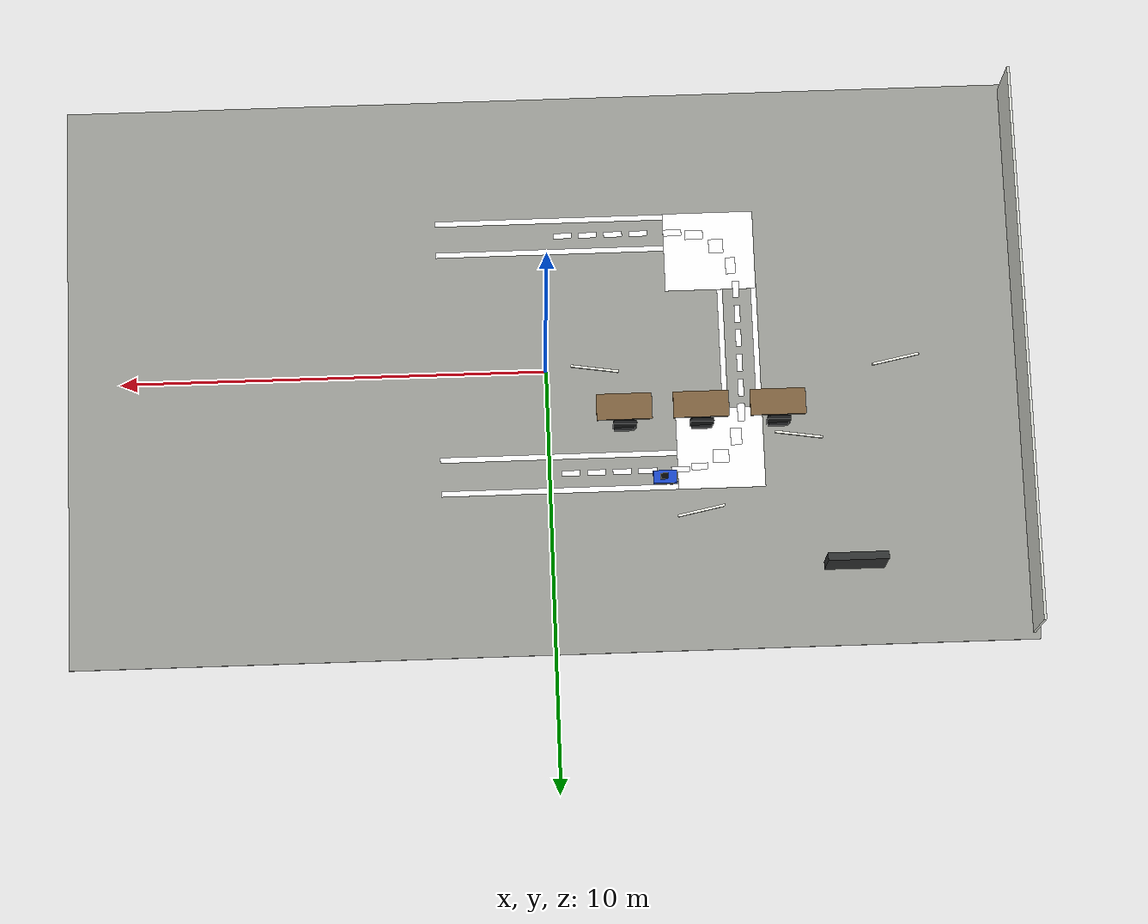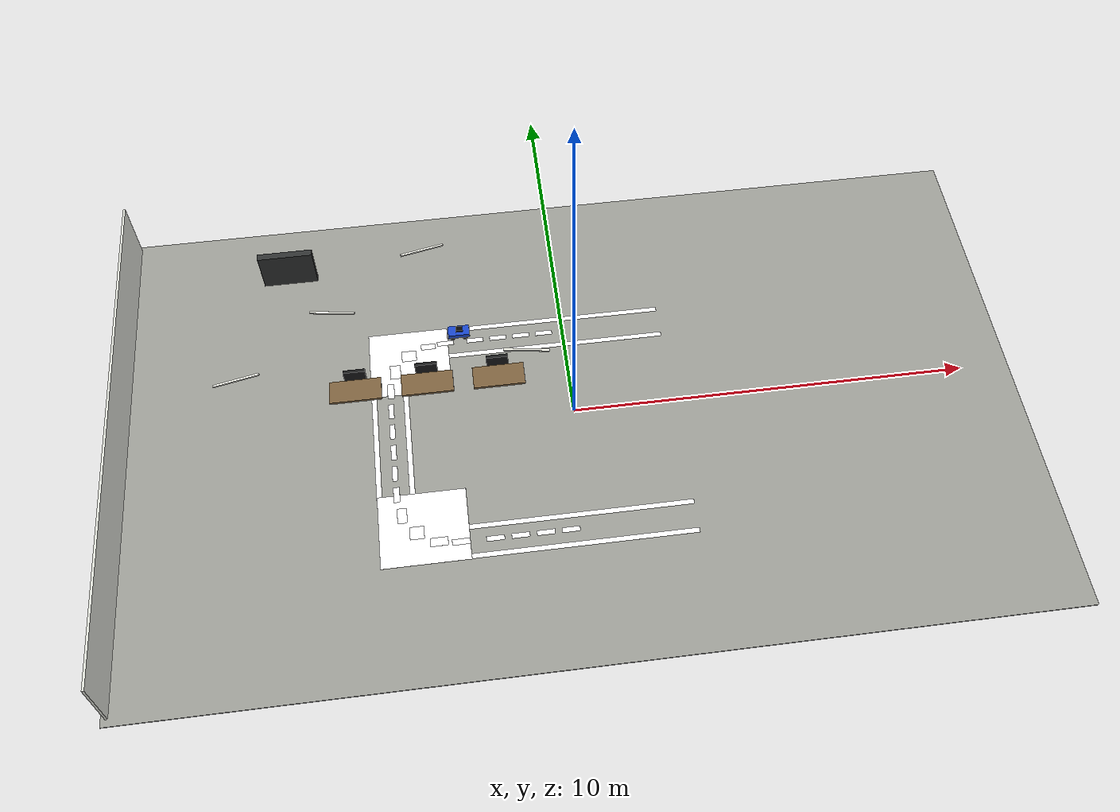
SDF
<sdf version="1.7">
 <world name="kookmin_xycar_track">
  <model name="kookmin_track">
   <static>true</static>
   <link name="floor_base">
    <pose>0.0000 0.0000 -0.0150 0.000000 0.000000 0.000000</pose>
    <collision name="collision">
     <geometry><box><size>22.5000 13.5000 0.0300</size></box></geometry>
     <surface>
      <friction>
       <ode><mu>50</mu><mu2>50</mu2></ode>
       <bullet><friction>1</friction><rolling_friction>0.1</rolling_friction></bullet>
      </friction>
     </surface>
    </collision>
    <visual name="visual">
     <geometry><box><size>22.5000 13.5000 0.0300</size></box></geometry>
     <material><ambient>0.6118 0.6157 0.5922 1</ambient><diffuse>0.6118 0.6157 0.5922 1</diffuse></material>
    </visual>
   </link>
   <link name="track_texture_surface">
    <pose>0 0 0.006 0 0 0</pose>
    <visual name="visual">
     <geometry><plane><normal>0 0 1</normal><size>22.5000 13.5000</size></plane></geometry>
     <material>
      <ambient>1 1 1 1</ambient>
      <diffuse>1 1 1 1</diffuse>
      <pbr>
       <metal>
        <albedo_map>file://media/materials/textures/kookmin_track_road.png</albedo_map>
        <roughness>1</roughness>
        <metalness>0</metalness>
       </metal>
      </pbr>
     </material>
    </visual>
   </link>
  </model>
  <model name="white_line_cad_01">
   <static>true</static>
   <pose>-4.9850 -0.4400 0.0140 0 0 0</pose>
   <link name="white_line_cad_01_surface">
    <visual name="visual">
     <cast_shadows>false</cast_shadows>
     <geometry><plane><normal>0 0 1</normal><size>0.1300 3.1200</size></plane></geometry>
     <material>
      <ambient>1 1 1 1</ambient>
      <diffuse>1 1 1 1</diffuse>
      <emissive>0.9490 0.9490 0.9255 1</emissive>
      <pbr>
       <metal>
        <albedo_map>file://media/materials/textures/kookmin_white_line_cad_01.png</albedo_map>
        <roughness>1</roughness>
        <metalness>0</metalness>
       </metal>
      </pbr>
     </material>
    </visual>
   </link>
  </model>
  <model name="white_line_cad_02">
   <static>true</static>
   <pose>-4.1850 -0.4400 0.0142 0 0 0</pose>
   <link name="white_line_cad_02_surface">
    <visual name="visual">
     <cast_shadows>false</cast_shadows>
     <geometry><plane><normal>0 0 1</normal><size>0.1300 3.1200</size></plane></geometry>
     <material>
      <ambient>1 1 1 1</ambient>
      <diffuse>1 1 1 1</diffuse>
      <emissive>0.9490 0.9490 0.9255 1</emissive>
      <pbr>
       <metal>
        <albedo_map>file://media/materials/textures/kookmin_white_line_cad_02.png</albedo_map>
        <roughness>1</roughness>
        <metalness>0</metalness>
       </metal>
      </pbr>
     </material>
    </visual>
   </link>
  </model>
  <model name="white_line_cad_03">
   <static>true</static>
   <pose>-0.3500 -3.7050 0.0144 0 0 0</pose>
   <link name="white_line_cad_03_surface">
    <visual name="visual">
     <cast_shadows>false</cast_shadows>
     <geometry><plane><normal>0 0 1</normal><size>5.7400 0.1300</size></plane></geometry>
     <material>
      <ambient>1 1 1 1</ambient>
      <diffuse>1 1 1 1</diffuse>
      <emissive>0.9490 0.9490 0.9255 1</emissive>
      <pbr>
       <metal>
        <albedo_map>file://media/materials/textures/kookmin_white_line_cad_03.png</albedo_map>
        <roughness>1</roughness>
        <metalness>0</metalness>
       </metal>
      </pbr>
     </material>
    </visual>
   </link>
  </model>
  <model name="white_line_cad_04">
   <static>true</static>
   <pose>-0.3500 -2.9350 0.0146 0 0 0</pose>
   <link name="white_line_cad_04_surface">
    <visual name="visual">
     <cast_shadows>false</cast_shadows>
     <geometry><plane><normal>0 0 1</normal><size>5.7400 0.1300</size></plane></geometry>
     <material>
      <ambient>1 1 1 1</ambient>
      <diffuse>1 1 1 1</diffuse>
      <emissive>0.9490 0.9490 0.9255 1</emissive>
      <pbr>
       <metal>
        <albedo_map>file://media/materials/textures/kookmin_white_line_cad_04.png</albedo_map>
        <roughness>1</roughness>
        <metalness>0</metalness>
       </metal>
      </pbr>
     </material>
    </visual>
   </link>
  </model>
  <model name="white_line_cad_05">
   <static>true</static>
   <pose>-0.3500 2.0550 0.0148 0 0 0</pose>
   <link name="white_line_cad_05_surface">
    <visual name="visual">
     <cast_shadows>false</cast_shadows>
     <geometry><plane><normal>0 0 1</normal><size>5.7800 0.1300</size></plane></geometry>
     <material>
      <ambient>1 1 1 1</ambient>
      <diffuse>1 1 1 1</diffuse>
      <emissive>0.9490 0.9490 0.9255 1</emissive>
      <pbr>
       <metal>
        <albedo_map>file://media/materials/textures/kookmin_white_line_cad_05.png</albedo_map>
        <roughness>1</roughness>
        <metalness>0</metalness>
       </metal>
      </pbr>
     </material>
    </visual>
   </link>
  </model>
  <model name="white_line_cad_06">
   <static>true</static>
   <pose>-0.3500 2.8650 0.0150 0 0 0</pose>
   <link name="white_line_cad_06_surface">
    <visual name="visual">
     <cast_shadows>false</cast_shadows>
     <geometry><plane><normal>0 0 1</normal><size>5.7800 0.1300</size></plane></geometry>
     <material>
      <ambient>1 1 1 1</ambient>
      <diffuse>1 1 1 1</diffuse>
      <emissive>0.9490 0.9490 0.9255 1</emissive>
      <pbr>
       <metal>
        <albedo_map>file://media/materials/textures/kookmin_white_line_cad_06.png</albedo_map>
        <roughness>1</roughness>
        <metalness>0</metalness>
       </metal>
      </pbr>
     </material>
    </visual>
   </link>
  </model>
  <model name="white_line_cad_18">
   <static>true</static>
   <pose>-3.6800 1.5650 0.0174 0 0 0</pose>
   <link name="white_line_cad_18_surface">
    <visual name="visual">
     <cast_shadows>false</cast_shadows>
     <geometry><plane><normal>0 0 1</normal><size>1.1400 1.1300</size></plane></geometry>
     <material>
      <ambient>1 1 1 1</ambient>
      <diffuse>1 1 1 1</diffuse>
      <emissive>0.9490 0.9490 0.9255 1</emissive>
      <pbr>
       <metal>
        <albedo_map>file://media/materials/textures/kookmin_white_line_cad_18.png</albedo_map>
        <roughness>1</roughness>
        <metalness>0</metalness>
       </metal>
      </pbr>
     </material>
    </visual>
   </link>
  </model>
  <model name="white_line_cad_19">
   <static>true</static>
   <pose>-4.0300 1.9650 0.0176 0 0 0</pose>
   <link name="white_line_cad_19_surface">
    <visual name="visual">
     <cast_shadows>false</cast_shadows>
     <geometry><plane><normal>0 0 1</normal><size>2.0400 1.9300</size></plane></geometry>
     <material>
      <ambient>1 1 1 1</ambient>
      <diffuse>1 1 1 1</diffuse>
      <emissive>0.9490 0.9490 0.9255 1</emissive>
      <pbr>
       <metal>
        <albedo_map>file://media/materials/textures/kookmin_white_line_cad_19.png</albedo_map>
        <roughness>1</roughness>
        <metalness>0</metalness>
       </metal>
      </pbr>
     </material>
    </visual>
   </link>
  </model>
  <model name="white_line_cad_20">
   <static>true</static>
   <pose>-3.6750 -2.4450 0.0178 0 0 0</pose>
   <link name="white_line_cad_20_surface">
    <visual name="visual">
     <cast_shadows>false</cast_shadows>
     <geometry><plane><normal>0 0 1</normal><size>1.1700 1.1300</size></plane></geometry>
     <material>
      <ambient>1 1 1 1</ambient>
      <diffuse>1 1 1 1</diffuse>
      <emissive>0.9490 0.9490 0.9255 1</emissive>
      <pbr>
       <metal>
        <albedo_map>file://media/materials/textures/kookmin_white_line_cad_20.png</albedo_map>
        <roughness>1</roughness>
        <metalness>0</metalness>
       </metal>
      </pbr>
     </material>
    </visual>
   </link>
  </model>
  <model name="white_line_cad_21">
   <static>true</static>
   <pose>-3.9700 -2.8300 0.0180 0 0 0</pose>
   <link name="white_line_cad_21_surface">
    <visual name="visual">
     <cast_shadows>false</cast_shadows>
     <geometry><plane><normal>0 0 1</normal><size>2.1400 1.9000</size></plane></geometry>
     <material>
      <ambient>1 1 1 1</ambient>
      <diffuse>1 1 1 1</diffuse>
      <emissive>0.9490 0.9490 0.9255 1</emissive>
      <pbr>
       <metal>
        <albedo_map>file://media/materials/textures/kookmin_white_line_cad_21.png</albedo_map>
        <roughness>1</roughness>
        <metalness>0</metalness>
       </metal>
      </pbr>
     </material>
    </visual>
   </link>
  </model>
  <model name="yellow_centerline_dash_001">
   <static>true</static>
   <pose>-2.3050 2.4650 0.0265 0 0 0</pose>
   <link name="yellow_centerline_dash_001_surface">
    <visual name="visual">
     <cast_shadows>false</cast_shadows>
     <geometry><plane><normal>0 0 1</normal><size>0.4300 0.1300</size></plane></geometry>
     <material>
      <ambient>1 1 1 1</ambient>
      <diffuse>1 1 1 1</diffuse>
      <emissive>1.0000 0.7686 0.0471 1</emissive>
      <pbr>
       <metal>
        <albedo_map>file://media/materials/textures/kookmin_yellow_centerline_dash_001.png</albedo_map>
        <roughness>1</roughness>
        <metalness>0</metalness>
       </metal>
      </pbr>
     </material>
    </visual>
   </link>
  </model>
  <model name="yellow_centerline_dash_002">
   <static>true</static>
   <pose>-1.7050 2.4650 0.0267 0 0 0</pose>
   <link name="yellow_centerline_dash_002_surface">
    <visual name="visual">
     <cast_shadows>false</cast_shadows>
     <geometry><plane><normal>0 0 1</normal><size>0.4300 0.1300</size></plane></geometry>
     <material>
      <ambient>1 1 1 1</ambient>
      <diffuse>1 1 1 1</diffuse>
      <emissive>1.0000 0.7686 0.0471 1</emissive>
      <pbr>
       <metal>
        <albedo_map>file://media/materials/textures/kookmin_yellow_centerline_dash_002.png</albedo_map>
        <roughness>1</roughness>
        <metalness>0</metalness>
       </metal>
      </pbr>
     </material>
    </visual>
   </link>
  </model>
  <model name="yellow_centerline_dash_003">
   <static>true</static>
   <pose>-1.1050 2.4650 0.0269 0 0 0</pose>
   <link name="yellow_centerline_dash_003_surface">
    <visual name="visual">
     <cast_shadows>false</cast_shadows>
     <geometry><plane><normal>0 0 1</normal><size>0.4300 0.1300</size></plane></geometry>
     <material>
      <ambient>1 1 1 1</ambient>
      <diffuse>1 1 1 1</diffuse>
      <emissive>1.0000 0.7686 0.0471 1</emissive>
      <pbr>
       <metal>
        <albedo_map>file://media/materials/textures/kookmin_yellow_centerline_dash_003.png</albedo_map>
        <roughness>1</roughness>
        <metalness>0</metalness>
       </metal>
      </pbr>
     </material>
    </visual>
   </link>
  </model>
  <model name="yellow_centerline_dash_004">
   <static>true</static>
   <pose>-0.5050 2.4650 0.0271 0 0 0</pose>
   <link name="yellow_centerline_dash_004_surface">
    <visual name="visual">
     <cast_shadows>false</cast_shadows>
     <geometry><plane><normal>0 0 1</normal><size>0.4300 0.1300</size></plane></geometry>
     <material>
      <ambient>1 1 1 1</ambient>
      <diffuse>1 1 1 1</diffuse>
      <emissive>1.0000 0.7686 0.0471 1</emissive>
      <pbr>
       <metal>
        <albedo_map>file://media/materials/textures/kookmin_yellow_centerline_dash_004.png</albedo_map>
        <roughness>1</roughness>
        <metalness>0</metalness>
       </metal>
      </pbr>
     </material>
    </visual>
   </link>
  </model>
  <model name="yellow_centerline_dash_009">
   <static>true</static>
   <pose>-3.0750 2.4550 0.0281 0 0 0</pose>
   <link name="yellow_centerline_dash_009_surface">
    <visual name="visual">
     <cast_shadows>false</cast_shadows>
     <geometry><plane><normal>0 0 1</normal><size>0.4300 0.1300</size></plane></geometry>
     <material>
      <ambient>1 1 1 1</ambient>
      <diffuse>1 1 1 1</diffuse>
      <emissive>1.0000 0.7686 0.0471 1</emissive>
      <pbr>
       <metal>
        <albedo_map>file://media/materials/textures/kookmin_yellow_centerline_dash_009.png</albedo_map>
        <roughness>1</roughness>
        <metalness>0</metalness>
       </metal>
      </pbr>
     </material>
    </visual>
   </link>
  </model>
  <model name="yellow_centerline_dash_011">
   <static>true</static>
   <pose>-3.5250 2.4000 0.0285 0 0 0</pose>
   <link name="yellow_centerline_dash_011_surface">
    <visual name="visual">
     <cast_shadows>false</cast_shadows>
     <geometry><plane><normal>0 0 1</normal><size>0.3700 0.1600</size></plane></geometry>
     <material>
      <ambient>1 1 1 1</ambient>
      <diffuse>1 1 1 1</diffuse>
      <emissive>1.0000 0.7686 0.0471 1</emissive>
      <pbr>
       <metal>
        <albedo_map>file://media/materials/textures/kookmin_yellow_centerline_dash_011.png</albedo_map>
        <roughness>1</roughness>
        <metalness>0</metalness>
       </metal>
      </pbr>
     </material>
    </visual>
   </link>
  </model>
  <model name="yellow_centerline_dash_013">
   <static>true</static>
   <pose>-4.0350 2.1650 0.0289 0 0 0</pose>
   <link name="yellow_centerline_dash_013_surface">
    <visual name="visual">
     <cast_shadows>false</cast_shadows>
     <geometry><plane><normal>0 0 1</normal><size>0.3700 0.3100</size></plane></geometry>
     <material>
      <ambient>1 1 1 1</ambient>
      <diffuse>1 1 1 1</diffuse>
      <emissive>1.0000 0.7686 0.0471 1</emissive>
      <pbr>
       <metal>
        <albedo_map>file://media/materials/textures/kookmin_yellow_centerline_dash_013.png</albedo_map>
        <roughness>1</roughness>
        <metalness>0</metalness>
       </metal>
      </pbr>
     </material>
    </visual>
   </link>
  </model>
  <model name="yellow_centerline_dash_014">
   <static>true</static>
   <pose>-4.4100 1.7100 0.0291 0 0 0</pose>
   <link name="yellow_centerline_dash_014_surface">
    <visual name="visual">
     <cast_shadows>false</cast_shadows>
     <geometry><plane><normal>0 0 1</normal><size>0.2600 0.4000</size></plane></geometry>
     <material>
      <ambient>1 1 1 1</ambient>
      <diffuse>1 1 1 1</diffuse>
      <emissive>1.0000 0.7686 0.0471 1</emissive>
      <pbr>
       <metal>
        <albedo_map>file://media/materials/textures/kookmin_yellow_centerline_dash_014.png</albedo_map>
        <roughness>1</roughness>
        <metalness>0</metalness>
       </metal>
      </pbr>
     </material>
    </visual>
   </link>
  </model>
  <model name="yellow_centerline_dash_016">
   <static>true</static>
   <pose>-4.5550 1.1350 0.0295 0 0 0</pose>
   <link name="yellow_centerline_dash_016_surface">
    <visual name="visual">
     <cast_shadows>false</cast_shadows>
     <geometry><plane><normal>0 0 1</normal><size>0.1700 0.4300</size></plane></geometry>
     <material>
      <ambient>1 1 1 1</ambient>
      <diffuse>1 1 1 1</diffuse>
      <emissive>1.0000 0.7686 0.0471 1</emissive>
      <pbr>
       <metal>
        <albedo_map>file://media/materials/textures/kookmin_yellow_centerline_dash_016.png</albedo_map>
        <roughness>1</roughness>
        <metalness>0</metalness>
       </metal>
      </pbr>
     </material>
    </visual>
   </link>
  </model>
  <model name="yellow_centerline_dash_019">
   <static>true</static>
   <pose>-4.5750 0.5300 0.0301 0 0 0</pose>
   <link name="yellow_centerline_dash_019_surface">
    <visual name="visual">
     <cast_shadows>false</cast_shadows>
     <geometry><plane><normal>0 0 1</normal><size>0.1300 0.4200</size></plane></geometry>
     <material>
      <ambient>1 1 1 1</ambient>
      <diffuse>1 1 1 1</diffuse>
      <emissive>1.0000 0.7686 0.0471 1</emissive>
      <pbr>
       <metal>
        <albedo_map>file://media/materials/textures/kookmin_yellow_centerline_dash_019.png</albedo_map>
        <roughness>1</roughness>
        <metalness>0</metalness>
       </metal>
      </pbr>
     </material>
    </visual>
   </link>
  </model>
  <model name="yellow_centerline_dash_021">
   <static>true</static>
   <pose>-4.5750 -0.0700 0.0305 0 0 0</pose>
   <link name="yellow_centerline_dash_021_surface">
    <visual name="visual">
     <cast_shadows>false</cast_shadows>
     <geometry><plane><normal>0 0 1</normal><size>0.1300 0.4200</size></plane></geometry>
     <material>
      <ambient>1 1 1 1</ambient>
      <diffuse>1 1 1 1</diffuse>
      <emissive>1.0000 0.7686 0.0471 1</emissive>
      <pbr>
       <metal>
        <albedo_map>file://media/materials/textures/kookmin_yellow_centerline_dash_021.png</albedo_map>
        <roughness>1</roughness>
        <metalness>0</metalness>
       </metal>
      </pbr>
     </material>
    </visual>
   </link>
  </model>
  <model name="yellow_centerline_dash_023">
   <static>true</static>
   <pose>-4.5750 -0.6700 0.0309 0 0 0</pose>
   <link name="yellow_centerline_dash_023_surface">
    <visual name="visual">
     <cast_shadows>false</cast_shadows>
     <geometry><plane><normal>0 0 1</normal><size>0.1300 0.4200</size></plane></geometry>
     <material>
      <ambient>1 1 1 1</ambient>
      <diffuse>1 1 1 1</diffuse>
      <emissive>1.0000 0.7686 0.0471 1</emissive>
      <pbr>
       <metal>
        <albedo_map>file://media/materials/textures/kookmin_yellow_centerline_dash_023.png</albedo_map>
        <roughness>1</roughness>
        <metalness>0</metalness>
       </metal>
      </pbr>
     </material>
    </visual>
   </link>
  </model>
  <model name="yellow_centerline_dash_025">
   <static>true</static>
   <pose>-4.5750 -1.2700 0.0313 0 0 0</pose>
   <link name="yellow_centerline_dash_025_surface">
    <visual name="visual">
     <cast_shadows>false</cast_shadows>
     <geometry><plane><normal>0 0 1</normal><size>0.1300 0.4200</size></plane></geometry>
     <material>
      <ambient>1 1 1 1</ambient>
      <diffuse>1 1 1 1</diffuse>
      <emissive>1.0000 0.7686 0.0471 1</emissive>
      <pbr>
       <metal>
        <albedo_map>file://media/materials/textures/kookmin_yellow_centerline_dash_025.png</albedo_map>
        <roughness>1</roughness>
        <metalness>0</metalness>
       </metal>
      </pbr>
     </material>
    </visual>
   </link>
  </model>
  <model name="yellow_centerline_dash_028">
   <static>true</static>
   <pose>-4.5650 -1.8650 0.0319 0 0 0</pose>
   <link name="yellow_centerline_dash_028_surface">
    <visual name="visual">
     <cast_shadows>false</cast_shadows>
     <geometry><plane><normal>0 0 1</normal><size>0.1500 0.4100</size></plane></geometry>
     <material>
      <ambient>1 1 1 1</ambient>
      <diffuse>1 1 1 1</diffuse>
      <emissive>1.0000 0.7686 0.0471 1</emissive>
      <pbr>
       <metal>
        <albedo_map>file://media/materials/textures/kookmin_yellow_centerline_dash_028.png</albedo_map>
        <roughness>1</roughness>
        <metalness>0</metalness>
       </metal>
      </pbr>
     </material>
    </visual>
   </link>
  </model>
  <model name="yellow_centerline_dash_030">
   <static>true</static>
   <pose>-4.4650 -2.4500 0.0323 0 0 0</pose>
   <link name="yellow_centerline_dash_030_surface">
    <visual name="visual">
     <cast_shadows>false</cast_shadows>
     <geometry><plane><normal>0 0 1</normal><size>0.2300 0.4000</size></plane></geometry>
     <material>
      <ambient>1 1 1 1</ambient>
      <diffuse>1 1 1 1</diffuse>
      <emissive>1.0000 0.7686 0.0471 1</emissive>
      <pbr>
       <metal>
        <albedo_map>file://media/materials/textures/kookmin_yellow_centerline_dash_030.png</albedo_map>
        <roughness>1</roughness>
        <metalness>0</metalness>
       </metal>
      </pbr>
     </material>
    </visual>
   </link>
  </model>
  <model name="yellow_centerline_dash_032">
   <static>true</static>
   <pose>-4.1400 -2.9450 0.0327 0 0 0</pose>
   <link name="yellow_centerline_dash_032_surface">
    <visual name="visual">
     <cast_shadows>false</cast_shadows>
     <geometry><plane><normal>0 0 1</normal><size>0.3400 0.3300</size></plane></geometry>
     <material>
      <ambient>1 1 1 1</ambient>
      <diffuse>1 1 1 1</diffuse>
      <emissive>1.0000 0.7686 0.0471 1</emissive>
      <pbr>
       <metal>
        <albedo_map>file://media/materials/textures/kookmin_yellow_centerline_dash_032.png</albedo_map>
        <roughness>1</roughness>
        <metalness>0</metalness>
       </metal>
      </pbr>
     </material>
    </visual>
   </link>
  </model>
  <model name="yellow_centerline_dash_033">
   <static>true</static>
   <pose>-3.6300 -3.2400 0.0329 0 0 0</pose>
   <link name="yellow_centerline_dash_033_surface">
    <visual name="visual">
     <cast_shadows>false</cast_shadows>
     <geometry><plane><normal>0 0 1</normal><size>0.4200 0.2200</size></plane></geometry>
     <material>
      <ambient>1 1 1 1</ambient>
      <diffuse>1 1 1 1</diffuse>
      <emissive>1.0000 0.7686 0.0471 1</emissive>
      <pbr>
       <metal>
        <albedo_map>file://media/materials/textures/kookmin_yellow_centerline_dash_033.png</albedo_map>
        <roughness>1</roughness>
        <metalness>0</metalness>
       </metal>
      </pbr>
     </material>
    </visual>
   </link>
  </model>
  <model name="yellow_centerline_dash_035">
   <static>true</static>
   <pose>-3.1150 -3.3050 0.0333 0 0 0</pose>
   <link name="yellow_centerline_dash_035_surface">
    <visual name="visual">
     <cast_shadows>false</cast_shadows>
     <geometry><plane><normal>0 0 1</normal><size>0.4300 0.1500</size></plane></geometry>
     <material>
      <ambient>1 1 1 1</ambient>
      <diffuse>1 1 1 1</diffuse>
      <emissive>1.0000 0.7686 0.0471 1</emissive>
      <pbr>
       <metal>
        <albedo_map>file://media/materials/textures/kookmin_yellow_centerline_dash_035.png</albedo_map>
        <roughness>1</roughness>
        <metalness>0</metalness>
       </metal>
      </pbr>
     </material>
    </visual>
   </link>
  </model>
  <model name="yellow_centerline_dash_036">
   <static>true</static>
   <pose>-2.3050 -3.3150 0.0335 0 0 0</pose>
   <link name="yellow_centerline_dash_036_surface">
    <visual name="visual">
     <cast_shadows>false</cast_shadows>
     <geometry><plane><normal>0 0 1</normal><size>0.4300 0.1300</size></plane></geometry>
     <material>
      <ambient>1 1 1 1</ambient>
      <diffuse>1 1 1 1</diffuse>
      <emissive>1.0000 0.7686 0.0471 1</emissive>
      <pbr>
       <metal>
        <albedo_map>file://media/materials/textures/kookmin_yellow_centerline_dash_036.png</albedo_map>
        <roughness>1</roughness>
        <metalness>0</metalness>
       </metal>
      </pbr>
     </material>
    </visual>
   </link>
  </model>
  <model name="yellow_centerline_dash_037">
   <static>true</static>
   <pose>-1.7050 -3.3150 0.0337 0 0 0</pose>
   <link name="yellow_centerline_dash_037_surface">
    <visual name="visual">
     <cast_shadows>false</cast_shadows>
     <geometry><plane><normal>0 0 1</normal><size>0.4300 0.1300</size></plane></geometry>
     <material>
      <ambient>1 1 1 1</ambient>
      <diffuse>1 1 1 1</diffuse>
      <emissive>1.0000 0.7686 0.0471 1</emissive>
      <pbr>
       <metal>
        <albedo_map>file://media/materials/textures/kookmin_yellow_centerline_dash_037.png</albedo_map>
        <roughness>1</roughness>
        <metalness>0</metalness>
       </metal>
      </pbr>
     </material>
    </visual>
   </link>
  </model>
  <model name="yellow_centerline_dash_038">
   <static>true</static>
   <pose>-1.1050 -3.3150 0.0339 0 0 0</pose>
   <link name="yellow_centerline_dash_038_surface">
    <visual name="visual">
     <cast_shadows>false</cast_shadows>
     <geometry><plane><normal>0 0 1</normal><size>0.4300 0.1300</size></plane></geometry>
     <material>
      <ambient>1 1 1 1</ambient>
      <diffuse>1 1 1 1</diffuse>
      <emissive>1.0000 0.7686 0.0471 1</emissive>
      <pbr>
       <metal>
        <albedo_map>file://media/materials/textures/kookmin_yellow_centerline_dash_038.png</albedo_map>
        <roughness>1</roughness>
        <metalness>0</metalness>
       </metal>
      </pbr>
     </material>
    </visual>
   </link>
  </model>
  <model name="yellow_centerline_dash_039">
   <static>true</static>
   <pose>-0.5050 -3.3150 0.0341 0 0 0</pose>
   <link name="yellow_centerline_dash_039_surface">
    <visual name="visual">
     <cast_shadows>false</cast_shadows>
     <geometry><plane><normal>0 0 1</normal><size>0.4300 0.1300</size></plane></geometry>
     <material>
      <ambient>1 1 1 1</ambient>
      <diffuse>1 1 1 1</diffuse>
      <emissive>1.0000 0.7686 0.0471 1</emissive>
      <pbr>
       <metal>
        <albedo_map>file://media/materials/textures/kookmin_yellow_centerline_dash_039.png</albedo_map>
        <roughness>1</roughness>
        <metalness>0</metalness>
       </metal>
      </pbr>
     </material>
    </visual>
   </link>
  </model>
  <model name="room_west_wall">
   <static>true</static>
   <pose>-11.1000 0.0000 0.9000 0.000000 0.000000 0.000000</pose>
   <link name="west_wall">
    <visual name="visual">
     <geometry><box><size>0.0600 13.2000 1.7000</size></box></geometry>
     <material><ambient>0.8627 0.8706 0.8392 1</ambient><diffuse>0.8627 0.8706 0.8392 1</diffuse></material>
    </visual>
   </link>
  </model>
  <model name="room_black_display_stand">
   <static>true</static>
   <pose>-7.0000 4.9000 0.7500 0.000000 0.000000 0.000000</pose>
   <link name="black_display_stand">
    <visual name="visual">
     <geometry><box><size>1.4000 0.1800 1.1000</size></box></geometry>
     <material><ambient>0.1882 0.1961 0.1961 1</ambient><diffuse>0.1882 0.1961 0.1961 1</diffuse></material>
    </visual>
   </link>
  </model>
  <model name="room_table_top_0">
   <static>true</static>
   <pose>-5.4000 1.0000 0.4300 0.000000 0.000000 0.000000</pose>
   <link name="table_top_0">
    <visual name="visual">
     <geometry><box><size>1.3000 0.6200 0.0600</size></box></geometry>
     <material><ambient>0.4941 0.3843 0.2471 1</ambient><diffuse>0.4941 0.3843 0.2471 1</diffuse></material>
    </visual>
   </link>
  </model>
  <model name="room_chair_back_0">
   <static>true</static>
   <pose>-5.4000 1.4300 0.4200 0.000000 0.000000 0.000000</pose>
   <link name="chair_back_0">
    <visual name="visual">
     <geometry><box><size>0.5500 0.0800 0.5200</size></box></geometry>
     <material><ambient>0.0941 0.0980 0.1020 1</ambient><diffuse>0.0941 0.0980 0.1020 1</diffuse></material>
    </visual>
   </link>
  </model>
  <model name="room_chair_seat_0">
   <static>true</static>
   <pose>-5.4000 1.3400 0.2600 0.000000 0.000000 0.000000</pose>
   <link name="chair_seat_0">
    <visual name="visual">
     <geometry><box><size>0.4800 0.4000 0.0800</size></box></geometry>
     <material><ambient>0.0941 0.0980 0.1020 1</ambient><diffuse>0.0941 0.0980 0.1020 1</diffuse></material>
    </visual>
   </link>
  </model>
  <model name="room_table_top_1">
   <static>true</static>
   <pose>-3.6000 1.0000 0.4300 0.000000 0.000000 0.000000</pose>
   <link name="table_top_1">
    <visual name="visual">
     <geometry><box><size>1.3000 0.6200 0.0600</size></box></geometry>
     <material><ambient>0.4941 0.3843 0.2471 1</ambient><diffuse>0.4941 0.3843 0.2471 1</diffuse></material>
    </visual>
   </link>
  </model>
  <model name="room_chair_back_1">
   <static>true</static>
   <pose>-3.6000 1.4300 0.4200 0.000000 0.000000 0.000000</pose>
   <link name="chair_back_1">
    <visual name="visual">
     <geometry><box><size>0.5500 0.0800 0.5200</size></box></geometry>
     <material><ambient>0.0941 0.0980 0.1020 1</ambient><diffuse>0.0941 0.0980 0.1020 1</diffuse></material>
    </visual>
   </link>
  </model>
  <model name="room_chair_seat_1">
   <static>true</static>
   <pose>-3.6000 1.3400 0.2600 0.000000 0.000000 0.000000</pose>
   <link name="chair_seat_1">
    <visual name="visual">
     <geometry><box><size>0.4800 0.4000 0.0800</size></box></geometry>
     <material><ambient>0.0941 0.0980 0.1020 1</ambient><diffuse>0.0941 0.0980 0.1020 1</diffuse></material>
    </visual>
   </link>
  </model>
  <model name="room_table_top_2">
   <static>true</static>
   <pose>-1.8000 1.0000 0.4300 0.000000 0.000000 0.000000</pose>
   <link name="table_top_2">
    <visual name="visual">
     <geometry><box><size>1.3000 0.6200 0.0600</size></box></geometry>
     <material><ambient>0.4941 0.3843 0.2471 1</ambient><diffuse>0.4941 0.3843 0.2471 1</diffuse></material>
    </visual>
   </link>
  </model>
  <model name="room_chair_back_2">
   <static>true</static>
   <pose>-1.8000 1.4300 0.4200 0.000000 0.000000 0.000000</pose>
   <link name="chair_back_2">
    <visual name="visual">
     <geometry><box><size>0.5500 0.0800 0.5200</size></box></geometry>
     <material><ambient>0.0941 0.0980 0.1020 1</ambient><diffuse>0.0941 0.0980 0.1020 1</diffuse></material>
    </visual>
   </link>
  </model>
  <model name="room_chair_seat_2">
   <static>true</static>
   <pose>-1.8000 1.3400 0.2600 0.000000 0.000000 0.000000</pose>
   <link name="chair_seat_2">
    <visual name="visual">
     <geometry><box><size>0.4800 0.4000 0.0800</size></box></geometry>
     <material><ambient>0.0941 0.0980 0.1020 1</ambient><diffuse>0.0941 0.0980 0.1020 1</diffuse></material>
    </visual>
   </link>
  </model>
  <model name="room_ceiling_light_0">
   <static>true</static>
   <pose>-8.0000 0.5000 2.1500 0.000000 0.000000 0.200000</pose>
   <link name="ceiling_light_0">
    <visual name="visual">
     <geometry><box><size>1.1000 0.0550 0.0350</size></box></geometry>
     <material><ambient>0.9608 0.9608 0.9216 1</ambient><diffuse>0.9608 0.9608 0.9216 1</diffuse></material>
    </visual>
   </link>
  </model>
  <model name="room_ceiling_light_1">
   <static>true</static>
   <pose>-5.7000 2.2000 2.1500 0.000000 0.000000 -0.150000</pose>
   <link name="ceiling_light_1">
    <visual name="visual">
     <geometry><box><size>1.1000 0.0550 0.0350</size></box></geometry>
     <material><ambient>0.9608 0.9608 0.9216 1</ambient><diffuse>0.9608 0.9608 0.9216 1</diffuse></material>
    </visual>
   </link>
  </model>
  <model name="room_ceiling_light_2">
   <static>true</static>
   <pose>-3.4000 3.9000 2.1500 0.000000 0.000000 0.200000</pose>
   <link name="ceiling_light_2">
    <visual name="visual">
     <geometry><box><size>1.1000 0.0550 0.0350</size></box></geometry>
     <material><ambient>0.9608 0.9608 0.9216 1</ambient><diffuse>0.9608 0.9608 0.9216 1</diffuse></material>
    </visual>
   </link>
  </model>
  <model name="room_ceiling_light_3">
   <static>true</static>
   <pose>-1.1000 0.5000 2.1500 0.000000 0.000000 -0.150000</pose>
   <link name="ceiling_light_3">
    <visual name="visual">
     <geometry><box><size>1.1000 0.0550 0.0350</size></box></geometry>
     <material><ambient>0.9608 0.9608 0.9216 1</ambient><diffuse>0.9608 0.9608 0.9216 1</diffuse></material>
    </visual>
   </link>
  </model>
  <model name="xycar_ackermann">
   <pose>-2.7000 2.6650 0.0500 0 0 3.1416</pose>
   <link name="chassis">
    <pose>0 0 0.135 0 0 0</pose>
    <inertial>
     <mass>2.2</mass>
     <inertia><ixx>0.055</ixx><ixy>0</ixy><ixz>0</ixz><iyy>0.13</iyy><iyz>0</iyz><izz>0.16</izz></inertia>
    </inertial>
    <collision name="collision"><geometry><box><size>0.55 0.30 0.12</size></box></geometry></collision>
    <visual name="body">
     <visibility_flags>2</visibility_flags>
     <geometry><box><size>0.55 0.30 0.12</size></box></geometry>
     <material><ambient>0.1 0.28 0.8 1</ambient><diffuse>0.1 0.28 0.8 1</diffuse></material>
    </visual>
    <visual name="mini_pc_body">
     <visibility_flags>2</visibility_flags>
     <pose>-0.02 0 0.115 0 0 0</pose>
     <geometry><box><size>0.17 0.13 0.07</size></box></geometry>
     <material><ambient>0.02 0.02 0.02 1</ambient><diffuse>0.02 0.02 0.02 1</diffuse></material>
    </visual>
    <visual name="lidar_body">
     <pose>0.225 0 -0.0125 0 0 0</pose>
     <geometry><cylinder><length>0.035</length><radius>0.040</radius></cylinder></geometry>
     <material><ambient>0.01 0.01 0.01 1</ambient><diffuse>0.01 0.01 0.01 1</diffuse></material>
    </visual>
    <sensor name="front_camera" type="camera">
     <pose>0.120 0 0.095 0 0.1870 0</pose>
     <topic>/image_raw</topic>
     <update_rate>14</update_rate>
     <camera>
      <camera_info_topic>/camera_info</camera_info_topic>
      <horizontal_fov>1.7032</horizontal_fov>
      <image><width>320</width><height>256</height><format>R8G8B8</format></image>
      <clip><near>0.03</near><far>20</far></clip>
      <visibility_mask>4294967293</visibility_mask>
      <lens>
       <type>gnomonical</type>
       <scale_to_hfov>true</scale_to_hfov>
       <cutoff_angle>1.5707963267948966</cutoff_angle>
       <env_texture_size>512</env_texture_size>
      </lens>
     </camera>
     <always_on>true</always_on>
     <visualize>false</visualize>
    </sensor>
    <sensor name="lidar" type="gpu_lidar">
     <pose>0.225 0 0.005 0 0 0</pose>
     <topic>/scan</topic>
     <update_rate>10</update_rate>
     <ray>
      <scan>
       <horizontal>
        <samples>505</samples>
        <resolution>1</resolution>
        <min_angle>-3.14159</min_angle>
        <max_angle>3.14159</max_angle>
       </horizontal>
      </scan>
      <range><min>0.10</min><max>12.0</max><resolution>0.01</resolution></range>
     </ray>
     <always_on>true</always_on>
     <visualize>false</visualize>
    </sensor>
   </link>
   <link name="front_left_wheel_steering_link">
    <pose>0.16 0.1200 0.06 0 0 0</pose>
    <inertial><mass>0.08</mass><inertia><ixx>0.0002</ixx><iyy>0.0002</iyy><izz>0.0002</izz></inertia></inertial>
   </link>
   <link name="front_right_wheel_steering_link">
    <pose>0.16 -0.1200 0.06 0 0 0</pose>
    <inertial><mass>0.08</mass><inertia><ixx>0.0002</ixx><iyy>0.0002</iyy><izz>0.0002</izz></inertia></inertial>
   </link>
   <link name="front_left_wheel">
    <pose>0.16 0.1325 0.06 -1.5707 0 0</pose>
    <inertial><mass>0.12</mass><inertia><ixx>0.0004</ixx><iyy>0.0004</iyy><izz>0.00025</izz></inertia></inertial>
    <collision name="collision">
     <geometry><cylinder><length>0.035</length><radius>0.06</radius></cylinder></geometry>
    </collision>
    <visual name="visual">
     <visibility_flags>2</visibility_flags>
     <geometry><cylinder><length>0.035</length><radius>0.06</radius></cylinder></geometry>
     <material><ambient>0.03 0.03 0.03 1</ambient><diffuse>0.03 0.03 0.03 1</diffuse></material>
    </visual>
   </link>
   <link name="front_right_wheel">
    <pose>0.16 -0.1325 0.06 -1.5707 0 0</pose>
    <inertial><mass>0.12</mass><inertia><ixx>0.0004</ixx><iyy>0.0004</iyy><izz>0.00025</izz></inertia></inertial>
    <collision name="collision">
     <geometry><cylinder><length>0.035</length><radius>0.06</radius></cylinder></geometry>
    </collision>
    <visual name="visual">
     <visibility_flags>2</visibility_flags>
     <geometry><cylinder><length>0.035</length><radius>0.06</radius></cylinder></geometry>
     <material><ambient>0.03 0.03 0.03 1</ambient><diffuse>0.03 0.03 0.03 1</diffuse></material>
    </visual>
   </link>
   <link name="rear_left_wheel">
    <pose>-0.16 0.1325 0.06 -1.5707 0 0</pose>
    <inertial><mass>0.12</mass><inertia><ixx>0.0004</ixx><iyy>0.0004</iyy><izz>0.00025</izz></inertia></inertial>
    <collision name="collision">
     <geometry><cylinder><length>0.035</length><radius>0.06</radius></cylinder></geometry>
    </collision>
    <visual name="visual">
     <visibility_flags>2</visibility_flags>
     <geometry><cylinder><length>0.035</length><radius>0.06</radius></cylinder></geometry>
     <material><ambient>0.03 0.03 0.03 1</ambient><diffuse>0.03 0.03 0.03 1</diffuse></material>
    </visual>
   </link>
   <link name="rear_right_wheel">
    <pose>-0.16 -0.1325 0.06 -1.5707 0 0</pose>
    <inertial><mass>0.12</mass><inertia><ixx>0.0004</ixx><iyy>0.0004</iyy><izz>0.00025</izz></inertia></inertial>
    <collision name="collision">
     <geometry><cylinder><length>0.035</length><radius>0.06</radius></cylinder></geometry>
    </collision>
    <visual name="visual">
     <visibility_flags>2</visibility_flags>
     <geometry><cylinder><length>0.035</length><radius>0.06</radius></cylinder></geometry>
     <material><ambient>0.03 0.03 0.03 1</ambient><diffuse>0.03 0.03 0.03 1</diffuse></material>
    </visual>
   </link>
   <joint name="front_left_wheel_steering_joint" type="revolute">
    <parent>chassis</parent>
    <child>front_left_wheel_steering_link</child>
    <axis>
     <xyz>0 0 1</xyz>
     <limit><lower>-0.7000</lower><upper>0.7000</upper><velocity>2.0</velocity><effort>8</effort></limit>
    </axis>
   </joint>
   <joint name="front_right_wheel_steering_joint" type="revolute">
    <parent>chassis</parent>
    <child>front_right_wheel_steering_link</child>
    <axis>
     <xyz>0 0 1</xyz>
     <limit><lower>-0.7000</lower><upper>0.7000</upper><velocity>2.0</velocity><effort>8</effort></limit>
    </axis>
   </joint>
   <joint name="front_left_wheel_joint" type="revolute">
    <parent>front_left_wheel_steering_link</parent>
    <child>front_left_wheel</child>
    <axis><xyz>0 0 1</xyz><limit><lower>-1.79769e+308</lower><upper>1.79769e+308</upper></limit></axis>
   </joint>
   <joint name="front_right_wheel_joint" type="revolute">
    <parent>front_right_wheel_steering_link</parent>
    <child>front_right_wheel</child>
    <axis><xyz>0 0 1</xyz><limit><lower>-1.79769e+308</lower><upper>1.79769e+308</upper></limit></axis>
   </joint>
   <joint name="rear_left_wheel_joint" type="revolute">
    <parent>chassis</parent>
    <child>rear_left_wheel</child>
    <axis><xyz>0 0 1</xyz><limit><lower>-1.79769e+308</lower><upper>1.79769e+308</upper></limit></axis>
   </joint>
   <joint name="rear_right_wheel_joint" type="revolute">
    <parent>chassis</parent>
    <child>rear_right_wheel</child>
    <axis><xyz>0 0 1</xyz><limit><lower>-1.79769e+308</lower><upper>1.79769e+308</upper></limit></axis>
   </joint>
   <plugin filename="gz-sim-ackermann-steering-system" name="gz::sim::systems::AckermannSteering">
    <left_joint>front_left_wheel_joint</left_joint>
    <left_joint>rear_left_wheel_joint</left_joint>
    <right_joint>front_right_wheel_joint</right_joint>
    <right_joint>rear_right_wheel_joint</right_joint>
    <left_steering_joint>front_left_wheel_steering_joint</left_steering_joint>
    <right_steering_joint>front_right_wheel_steering_joint</right_steering_joint>
    <kingpin_width>0.240</kingpin_width>
    <steering_limit>0.5500</steering_limit>
    <wheel_base>0.32</wheel_base>
    <wheel_separation>0.265</wheel_separation>
    <wheel_radius>0.06</wheel_radius>
    <min_velocity>-4.0000</min_velocity>
    <max_velocity>8.0000</max_velocity>
    <min_acceleration>-2</min_acceleration>
    <max_acceleration>2</max_acceleration>
   </plugin>
  </model>
 </world>
</sdf>
